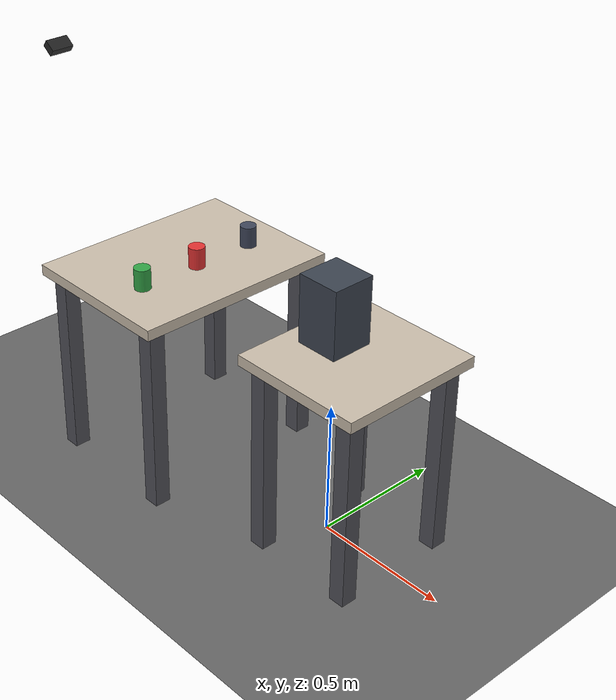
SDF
<?xml version="1.0" ?>
<sdf version="1.9">
  <world name="empowerment_table">

    <physics name="1ms" type="ignored">
      <max_step_size>0.001</max_step_size>
      <real_time_factor>1.0</real_time_factor>
    </physics>

    <plugin filename="gz-sim-physics-system"
            name="gz::sim::systems::Physics"/>
    <plugin filename="gz-sim-user-commands-system"
            name="gz::sim::systems::UserCommands"/>
    <plugin filename="gz-sim-scene-broadcaster-system"
            name="gz::sim::systems::SceneBroadcaster"/>
    <plugin filename="gz-sim-sensors-system"
            name="gz::sim::systems::Sensors">
      <render_engine>ogre2</render_engine>
    </plugin>
    <plugin filename="gz-sim-contact-system"
            name="gz::sim::systems::Contact"/>

    <scene>
      <ambient>0.55 0.55 0.58 1</ambient>
      <background>0.75 0.80 0.86 1</background>
      <shadows>true</shadows>
    </scene>

    <light type="directional" name="sun">
      <cast_shadows>true</cast_shadows>
      <pose>0 0 10 0 0 0</pose>
      <diffuse>0.85 0.85 0.82 1</diffuse>
      <specular>0.2 0.2 0.2 1</specular>
      <direction>0.45 0.25 -0.86</direction>
    </light>

    <light type="directional" name="fill">
      <cast_shadows>false</cast_shadows>
      <pose>0 0 6 0 0 0</pose>
      <diffuse>0.45 0.45 0.50 1</diffuse>
      <specular>0.05 0.05 0.05 1</specular>
      <direction>-0.6 -0.35 -0.72</direction>
    </light>

    <!-- Ground -->
    <model name="ground_plane">
      <static>true</static>
      <link name="link">
        <collision name="collision">
          <geometry><plane><normal>0 0 1</normal><size>10 10</size></plane></geometry>
        </collision>
        <visual name="visual">
          <geometry><plane><normal>0 0 1</normal><size>10 10</size></plane></geometry>
          <material>
            <ambient>0.3 0.3 0.3 1</ambient>
            <diffuse>0.4 0.4 0.4 1</diffuse>
          </material>
        </visual>
      </link>
    </model>

    <!-- Robot table. -->
    <model name="robot_table">
      <static>true</static>
      <pose>0.1 0 0.730 0 0 0</pose>
      <link name="link">
        <collision name="top_collision">
          <geometry><box><size>0.5 0.55 0.04</size></box></geometry>
          <surface><friction><ode><mu>0.4</mu><mu2>0.4</mu2></ode></friction></surface>
        </collision>
        <visual name="top_visual">
          <geometry><box><size>0.5 0.55 0.04</size></box></geometry>
          <material>
            <ambient>0.7 0.66 0.6 1</ambient>
            <diffuse>0.8 0.75 0.68 1</diffuse>
          </material>
        </visual>
        <collision name="leg0_collision">
          <pose>0.190 0.215 -0.375 0 0 0</pose>
          <geometry><box><size>0.06 0.06 0.710</size></box></geometry>
        </collision>
        <visual name="leg0_visual">
          <pose>0.190 0.215 -0.375 0 0 0</pose>
          <geometry><box><size>0.06 0.06 0.710</size></box></geometry>
          <material>
            <ambient>0.25 0.25 0.27 1</ambient>
            <diffuse>0.32 0.32 0.35 1</diffuse>
          </material>
        </visual>
        <collision name="leg1_collision">
          <pose>0.190 -0.215 -0.375 0 0 0</pose>
          <geometry><box><size>0.06 0.06 0.710</size></box></geometry>
        </collision>
        <visual name="leg1_visual">
          <pose>0.190 -0.215 -0.375 0 0 0</pose>
          <geometry><box><size>0.06 0.06 0.710</size></box></geometry>
          <material>
            <ambient>0.25 0.25 0.27 1</ambient>
            <diffuse>0.32 0.32 0.35 1</diffuse>
          </material>
        </visual>
        <collision name="leg2_collision">
          <pose>-0.190 0.215 -0.375 0 0 0</pose>
          <geometry><box><size>0.06 0.06 0.710</size></box></geometry>
        </collision>
        <visual name="leg2_visual">
          <pose>-0.190 0.215 -0.375 0 0 0</pose>
          <geometry><box><size>0.06 0.06 0.710</size></box></geometry>
          <material>
            <ambient>0.25 0.25 0.27 1</ambient>
            <diffuse>0.32 0.32 0.35 1</diffuse>
          </material>
        </visual>
        <collision name="leg3_collision">
          <pose>-0.190 -0.215 -0.375 0 0 0</pose>
          <geometry><box><size>0.06 0.06 0.710</size></box></geometry>
        </collision>
        <visual name="leg3_visual">
          <pose>-0.190 -0.215 -0.375 0 0 0</pose>
          <geometry><box><size>0.06 0.06 0.710</size></box></geometry>
          <material>
            <ambient>0.25 0.25 0.27 1</ambient>
            <diffuse>0.32 0.32 0.35 1</diffuse>
          </material>
        </visual>
      </link>
    </model>

    <!-- Mounting riser. The UR5 bolts to the top of this, at z = 1.00. -->
    <model name="robot_riser">
      <static>true</static>
      <pose>0 0 0.875 0 0 0</pose>
      <link name="link">
        <collision name="collision">
          <geometry><box><size>0.16 0.16 0.25</size></box></geometry>
        </collision>
        <visual name="visual">
          <geometry><box><size>0.16 0.16 0.25</size></box></geometry>
          <material>
            <ambient>0.18 0.20 0.24 1</ambient>
            <diffuse>0.24 0.27 0.32 1</diffuse>
          </material>
        </visual>
      </link>
    </model>

    <!-- Workbench. Objects live here, camera looks straight down at it. -->
    <model name="object_table">
      <static>true</static>
      <pose>-0.75 0 0.730 0 0 0</pose>
      <link name="link">
        <collision name="top_collision">
          <geometry><box><size>0.6 0.8 0.04</size></box></geometry>
          <surface><friction><ode><mu>0.4</mu><mu2>0.4</mu2></ode></friction></surface>
        </collision>
        <visual name="top_visual">
          <geometry><box><size>0.6 0.8 0.04</size></box></geometry>
          <material>
            <ambient>0.7 0.66 0.6 1</ambient>
            <diffuse>0.8 0.75 0.68 1</diffuse>
          </material>
        </visual>
        <collision name="leg0_collision">
          <pose>0.240 0.340 -0.375 0 0 0</pose>
          <geometry><box><size>0.06 0.06 0.710</size></box></geometry>
        </collision>
        <visual name="leg0_visual">
          <pose>0.240 0.340 -0.375 0 0 0</pose>
          <geometry><box><size>0.06 0.06 0.710</size></box></geometry>
          <material>
            <ambient>0.25 0.25 0.27 1</ambient>
            <diffuse>0.32 0.32 0.35 1</diffuse>
          </material>
        </visual>
        <collision name="leg1_collision">
          <pose>0.240 -0.340 -0.375 0 0 0</pose>
          <geometry><box><size>0.06 0.06 0.710</size></box></geometry>
        </collision>
        <visual name="leg1_visual">
          <pose>0.240 -0.340 -0.375 0 0 0</pose>
          <geometry><box><size>0.06 0.06 0.710</size></box></geometry>
          <material>
            <ambient>0.25 0.25 0.27 1</ambient>
            <diffuse>0.32 0.32 0.35 1</diffuse>
          </material>
        </visual>
        <collision name="leg2_collision">
          <pose>-0.240 0.340 -0.375 0 0 0</pose>
          <geometry><box><size>0.06 0.06 0.710</size></box></geometry>
        </collision>
        <visual name="leg2_visual">
          <pose>-0.240 0.340 -0.375 0 0 0</pose>
          <geometry><box><size>0.06 0.06 0.710</size></box></geometry>
          <material>
            <ambient>0.25 0.25 0.27 1</ambient>
            <diffuse>0.32 0.32 0.35 1</diffuse>
          </material>
        </visual>
        <collision name="leg3_collision">
          <pose>-0.240 -0.340 -0.375 0 0 0</pose>
          <geometry><box><size>0.06 0.06 0.710</size></box></geometry>
        </collision>
        <visual name="leg3_visual">
          <pose>-0.240 -0.340 -0.375 0 0 0</pose>
          <geometry><box><size>0.06 0.06 0.710</size></box></geometry>
          <material>
            <ambient>0.25 0.25 0.27 1</ambient>
            <diffuse>0.32 0.32 0.35 1</diffuse>
          </material>
        </visual>
      </link>
    </model>

    <model name="puck">
      <pose>-0.68 0.0 0.79 0 0 0</pose>
      <link name="link">
        <inertial>
          <mass>0.05</mass>
          <inertia>
            <ixx>3.2e-5</ixx><iyy>3.2e-5</iyy><izz>4.0e-5</izz>
            <ixy>0</ixy><ixz>0</ixz><iyz>0</iyz>
          </inertia>
        </inertial>
        <collision name="collision">
          <geometry><cylinder><radius>0.03</radius><length>0.08</length></cylinder></geometry>
          <surface>
            <friction><ode><mu>0.25</mu><mu2>0.25</mu2></ode></friction>
          </surface>
        </collision>
        <visual name="visual">
          <geometry><cylinder><radius>0.03</radius><length>0.08</length></cylinder></geometry>
          <material>
            <ambient>0.7 0.15 0.15 1</ambient>
            <diffuse>0.9 0.2 0.2 1</diffuse>
          </material>
        </visual>
      </link>
      <plugin filename="gz-sim-pose-publisher-system"
              name="gz::sim::systems::PosePublisher">
        <publish_link_pose>false</publish_link_pose>
        <publish_model_pose>true</publish_model_pose>
        <!-- false => one gz.msgs.Pose, which is what config/gz_bridge.yaml
             maps to geometry_msgs/PoseStamped. true would emit Pose_V and
             the bridge would silently carry nothing. -->
        <use_pose_vector_msg>false</use_pose_vector_msg>
        <update_frequency>30</update_frequency>
      </plugin>
    </model>

    <model name="fixed_block">
      <static>true</static>
      <pose>-0.68 0.24 0.79 0 0 0</pose>
      <link name="link">
        <collision name="collision">
          <geometry><cylinder><radius>0.03</radius><length>0.08</length></cylinder></geometry>
        </collision>
        <visual name="visual">
          <geometry><cylinder><radius>0.03</radius><length>0.08</length></cylinder></geometry>
          <material>
            <ambient>0.18 0.20 0.26 1</ambient>
            <diffuse>0.25 0.28 0.36 1</diffuse>
          </material>
        </visual>
      </link>
      <plugin filename="gz-sim-pose-publisher-system"
              name="gz::sim::systems::PosePublisher">
        <publish_link_pose>false</publish_link_pose>
        <publish_model_pose>true</publish_model_pose>
        <use_pose_vector_msg>false</use_pose_vector_msg>
        <update_frequency>30</update_frequency>
      </plugin>
    </model>

    <model name="drifter">
      <pose>-0.68 -0.24 0.793 0 0 0</pose>

      <link name="anchor">
        <inertial>
          <mass>1.0</mass>
          <inertia>
            <ixx>1e-3</ixx><iyy>1e-3</iyy><izz>1e-3</izz>
            <ixy>0</ixy><ixz>0</ixz><iyz>0</iyz>
          </inertia>
        </inertial>
      </link>
      <joint name="anchor_to_world" type="fixed">
        <parent>world</parent>
        <child>anchor</child>
      </joint>

      <link name="block">
        <inertial>
          <mass>0.05</mass>
          <inertia>
            <ixx>3.2e-5</ixx><iyy>3.2e-5</iyy><izz>4.0e-5</izz>
            <ixy>0</ixy><ixz>0</ixz><iyz>0</iyz>
          </inertia>
        </inertial>
        <collision name="collision">
          <geometry><cylinder><radius>0.03</radius><length>0.08</length></cylinder></geometry>
          <surface>
            <friction><ode><mu>0.25</mu><mu2>0.25</mu2></ode></friction>
          </surface>
        </collision>
        <visual name="visual">
          <geometry><cylinder><radius>0.03</radius><length>0.08</length></cylinder></geometry>
          <material>
            <ambient>0.15 0.45 0.20 1</ambient>
            <diffuse>0.20 0.65 0.28 1</diffuse>
          </material>
        </visual>
      </link>

      <joint name="slide" type="prismatic">
        <parent>anchor</parent>
        <child>block</child>
        <axis>
          <xyz>0 1 0</xyz>
          <limit><lower>-0.12</lower><upper>0.12</upper><effort>50</effort><velocity>0.5</velocity></limit>
          <dynamics><damping>3.0</damping></dynamics>
        </axis>
      </joint>

      <plugin filename="gz-sim-joint-position-controller-system"
              name="gz::sim::systems::JointPositionController">
        <topic>/drifter/position</topic>
        <joint_name>slide</joint_name>
        <p_gain>200</p_gain>
        <i_gain>5</i_gain>
        <d_gain>20</d_gain>
        <i_min>-5</i_min>
        <i_max>5</i_max>
        <cmd_min>-20</cmd_min>
        <cmd_max>20</cmd_max>
      </plugin>

      <plugin filename="gz-sim-joint-state-publisher-system"
              name="gz::sim::systems::JointStatePublisher">
        <topic>/drifter/joint_state</topic>
      </plugin>
    </model>

    <model name="overhead_camera">
      <static>true</static>
      <pose>-1.45 0 1.35 0 0.6283 0</pose>
      <link name="link">
        <visual name="visual">
          <geometry><box><size>0.05 0.09 0.03</size></box></geometry>
          <material><diffuse>0.15 0.15 0.15 1</diffuse></material>
        </visual>
        <sensor name="depth_camera" type="depth_camera">
          <always_on>1</always_on>
          <update_rate>5</update_rate>
          <visualize>true</visualize>
          <topic>depth_camera</topic>
          <gz_frame_id>depth_camera_link</gz_frame_id>
          <camera>
            <horizontal_fov>0.8727</horizontal_fov>
            <image>
              <width>640</width>
              <height>480</height>
              <format>R_FLOAT32</format>
            </image>
            <clip>
              <near>0.1</near>
              <far>2.5</far>
            </clip>
            <noise>
              <type>gaussian</type>
              <mean>0.0</mean>
              <stddev>0.003</stddev>
            </noise>
          </camera>
        </sensor>
      </link>
    </model>

  </world>
</sdf>
